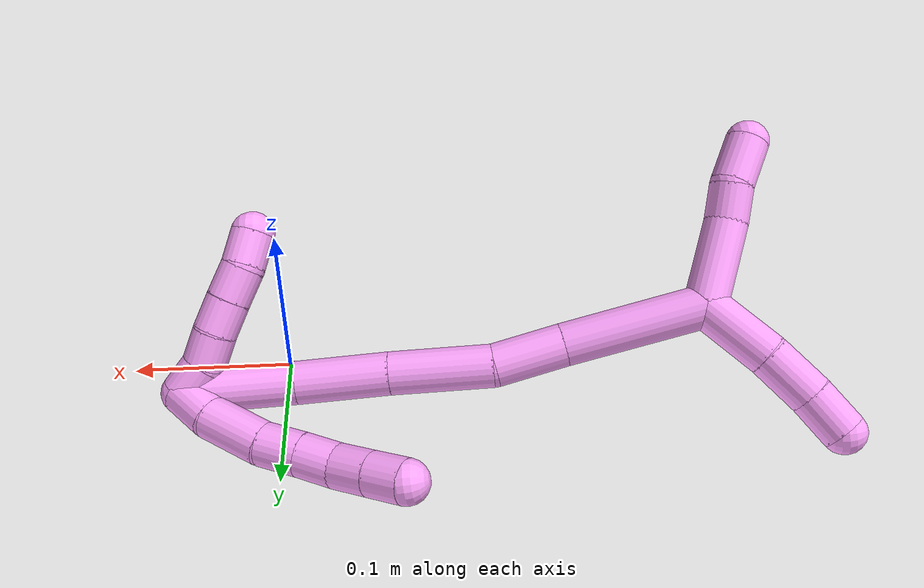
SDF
<sdf version="1.7">
 <world name="default">
  <model name="4">
   <static>0</static>
   <link name="4">
    <collision name="collision-cylinder-e_1_2_8">
     <pose>0.007882 0.003739 0.0087 -0.405936 0.694141 -0.148608</pose>
     <geometry><cylinder><radius>0.0125</radius><length>0.024642</length></cylinder></geometry>
     <surface>
      <friction><ode><mu>1.16</mu><mu2>1.16</mu2><slip1>0</slip1><slip2>0</slip2></ode></friction>
      <contact><ode><kp>1e+06</kp><kd>1</kd><max_vel>0</max_vel><min_depth>0.001</min_depth></ode></contact>
     </surface>
    </collision>
    <visual name="visual-cylinder-e_1_2_8">
     <pose>0.007882 0.003739 0.0087 -0.405936 0.694141 -0.148608</pose>
     <geometry><cylinder><radius>0.0125</radius><length>0.024642</length></cylinder></geometry>
     <material><ambient>1 0.65098 0.996078 1</ambient></material>
    </visual>
    <collision name="collision-cylinder-e_2_8_9">
     <pose>0.024691 0.01182 0.032797 -0.274798 0.508992 -0.071907</pose>
     <geometry><cylinder><radius>0.0125</radius><length>0.036637</length></cylinder></geometry>
     <surface>
      <friction><ode><mu>1.16</mu><mu2>1.16</mu2><slip1>0</slip1><slip2>0</slip2></ode></friction>
      <contact><ode><kp>1e+06</kp><kd>1</kd><max_vel>0</max_vel><min_depth>0.001</min_depth></ode></contact>
     </surface>
    </collision>
    <visual name="visual-cylinder-e_2_8_9">
     <pose>0.024691 0.01182 0.032797 -0.274798 0.508992 -0.071907</pose>
     <geometry><cylinder><radius>0.0125</radius><length>0.036637</length></cylinder></geometry>
     <material><ambient>1 0.65098 0.996078 1</ambient></material>
    </visual>
    <collision name="collision-cylinder-e_3_9_10">
     <pose>0.037823 0.017955 0.059165 -0.16213 0.361652 -0.029704</pose>
     <geometry><cylinder><radius>0.0125</radius><length>0.023774</length></cylinder></geometry>
     <surface>
      <friction><ode><mu>1.16</mu><mu2>1.16</mu2><slip1>0</slip1><slip2>0</slip2></ode></friction>
      <contact><ode><kp>1e+06</kp><kd>1</kd><max_vel>0</max_vel><min_depth>0.001</min_depth></ode></contact>
     </surface>
    </collision>
    <visual name="visual-cylinder-e_3_9_10">
     <pose>0.037823 0.017955 0.059165 -0.16213 0.361652 -0.029704</pose>
     <geometry><cylinder><radius>0.0125</radius><length>0.023774</length></cylinder></geometry>
     <material><ambient>1 0.65098 0.996078 1</ambient></material>
    </visual>
    <collision name="collision-cylinder-e_4_10_11">
     <pose>0.046213 0.021407 0.080013 -0.166265 0.395838 -0.033417</pose>
     <geometry><cylinder><radius>0.0125</radius><length>0.021706</length></cylinder></geometry>
     <surface>
      <friction><ode><mu>1.16</mu><mu2>1.16</mu2><slip1>0</slip1><slip2>0</slip2></ode></friction>
      <contact><ode><kp>1e+06</kp><kd>1</kd><max_vel>0</max_vel><min_depth>0.001</min_depth></ode></contact>
     </surface>
    </collision>
    <visual name="visual-cylinder-e_4_10_11">
     <pose>0.046213 0.021407 0.080013 -0.166265 0.395838 -0.033417</pose>
     <geometry><cylinder><radius>0.0125</radius><length>0.021706</length></cylinder></geometry>
     <material><ambient>1 0.65098 0.996078 1</ambient></material>
    </visual>
    <collision name="collision-cylinder-e_5_11_12">
     <pose>0.055398 0.022607 0.099753 0.046295 0.468705 0.011054</pose>
     <geometry><cylinder><radius>0.0125</radius><length>0.022137</length></cylinder></geometry>
     <surface>
      <friction><ode><mu>1.16</mu><mu2>1.16</mu2><slip1>0</slip1><slip2>0</slip2></ode></friction>
      <contact><ode><kp>1e+06</kp><kd>1</kd><max_vel>0</max_vel><min_depth>0.001</min_depth></ode></contact>
     </surface>
    </collision>
    <visual name="visual-cylinder-e_5_11_12">
     <pose>0.055398 0.022607 0.099753 0.046295 0.468705 0.011054</pose>
     <geometry><cylinder><radius>0.0125</radius><length>0.022137</length></cylinder></geometry>
     <material><ambient>1 0.65098 0.996078 1</ambient></material>
    </visual>
    <collision name="collision-cylinder-e_6_12_6">
     <pose>0.065097 0.021759 0.119057 0.041404 0.461471 0.009728</pose>
     <geometry><cylinder><radius>0.0125</radius><length>0.021105</length></cylinder></geometry>
     <surface>
      <friction><ode><mu>1.16</mu><mu2>1.16</mu2><slip1>0</slip1><slip2>0</slip2></ode></friction>
      <contact><ode><kp>1e+06</kp><kd>1</kd><max_vel>0</max_vel><min_depth>0.001</min_depth></ode></contact>
     </surface>
    </collision>
    <visual name="visual-cylinder-e_6_12_6">
     <pose>0.065097 0.021759 0.119057 0.041404 0.461471 0.009728</pose>
     <geometry><cylinder><radius>0.0125</radius><length>0.021105</length></cylinder></geometry>
     <material><ambient>1 0.65098 0.996078 1</ambient></material>
    </visual>
    <collision name="collision-cylinder-e_1_2_13">
     <pose>-0.003718 -0.005867 0.007194 0.684189 -0.380951 -0.137104</pose>
     <geometry><cylinder><radius>0.0125</radius><length>0.02</length></cylinder></geometry>
     <surface>
      <friction><ode><mu>1.16</mu><mu2>1.16</mu2><slip1>0</slip1><slip2>0</slip2></ode></friction>
      <contact><ode><kp>1e+06</kp><kd>1</kd><max_vel>0</max_vel><min_depth>0.001</min_depth></ode></contact>
     </surface>
    </collision>
    <visual name="visual-cylinder-e_1_2_13">
     <pose>-0.003718 -0.005867 0.007194 0.684189 -0.380951 -0.137104</pose>
     <geometry><cylinder><radius>0.0125</radius><length>0.02</length></cylinder></geometry>
     <material><ambient>1 0.65098 0.996078 1</ambient></material>
    </visual>
    <collision name="collision-cylinder-e_2_13_14">
     <pose>-0.011648 -0.019446 0.019161 1.01652 -0.434803 -0.244878</pose>
     <geometry><cylinder><radius>0.0125</radius><length>0.02</length></cylinder></geometry>
     <surface>
      <friction><ode><mu>1.16</mu><mu2>1.16</mu2><slip1>0</slip1><slip2>0</slip2></ode></friction>
      <contact><ode><kp>1e+06</kp><kd>1</kd><max_vel>0</max_vel><min_depth>0.001</min_depth></ode></contact>
     </surface>
    </collision>
    <visual name="visual-cylinder-e_2_13_14">
     <pose>-0.011648 -0.019446 0.019161 1.01652 -0.434803 -0.244878</pose>
     <geometry><cylinder><radius>0.0125</radius><length>0.02</length></cylinder></geometry>
     <material><ambient>1 0.65098 0.996078 1</ambient></material>
    </visual>
    <collision name="collision-cylinder-e_3_14_15">
     <pose>-0.020925 -0.034103 0.029046 0.936314 -0.530992 -0.273274</pose>
     <geometry><cylinder><radius>0.0125</radius><length>0.02</length></cylinder></geometry>
     <surface>
      <friction><ode><mu>1.16</mu><mu2>1.16</mu2><slip1>0</slip1><slip2>0</slip2></ode></friction>
      <contact><ode><kp>1e+06</kp><kd>1</kd><max_vel>0</max_vel><min_depth>0.001</min_depth></ode></contact>
     </surface>
    </collision>
    <visual name="visual-cylinder-e_3_14_15">
     <pose>-0.020925 -0.034103 0.029046 0.936314 -0.530992 -0.273274</pose>
     <geometry><cylinder><radius>0.0125</radius><length>0.02</length></cylinder></geometry>
     <material><ambient>1 0.65098 0.996078 1</ambient></material>
    </visual>
    <collision name="collision-cylinder-e_4_15_16">
     <pose>-0.031209 -0.047766 0.039413 0.90698 -0.549225 -0.272906</pose>
     <geometry><cylinder><radius>0.0125</radius><length>0.02</length></cylinder></geometry>
     <surface>
      <friction><ode><mu>1.16</mu><mu2>1.16</mu2><slip1>0</slip1><slip2>0</slip2></ode></friction>
      <contact><ode><kp>1e+06</kp><kd>1</kd><max_vel>0</max_vel><min_depth>0.001</min_depth></ode></contact>
     </surface>
    </collision>
    <visual name="visual-cylinder-e_4_15_16">
     <pose>-0.031209 -0.047766 0.039413 0.90698 -0.549225 -0.272906</pose>
     <geometry><cylinder><radius>0.0125</radius><length>0.02</length></cylinder></geometry>
     <material><ambient>1 0.65098 0.996078 1</ambient></material>
    </visual>
    <collision name="collision-cylinder-e_5_16_5">
     <pose>-0.043338 -0.060806 0.048173 1.06454 -0.762755 -0.463866</pose>
     <geometry><cylinder><radius>0.0125</radius><length>0.02</length></cylinder></geometry>
     <surface>
      <friction><ode><mu>1.16</mu><mu2>1.16</mu2><slip1>0</slip1><slip2>0</slip2></ode></friction>
      <contact><ode><kp>1e+06</kp><kd>1</kd><max_vel>0</max_vel><min_depth>0.001</min_depth></ode></contact>
     </surface>
    </collision>
    <visual name="visual-cylinder-e_5_16_5">
     <pose>-0.043338 -0.060806 0.048173 1.06454 -0.762755 -0.463866</pose>
     <geometry><cylinder><radius>0.0125</radius><length>0.02</length></cylinder></geometry>
     <material><ambient>1 0.65098 0.996078 1</ambient></material>
    </visual>
    <collision name="collision-cylinder-e_1_2_17">
     <pose>-0.002899 0.004053 0.031765 -0.126894 -0.090283 0.00574</pose>
     <geometry><cylinder><radius>0.0125</radius><length>0.064306</length></cylinder></geometry>
     <surface>
      <friction><ode><mu>1.16</mu><mu2>1.16</mu2><slip1>0</slip1><slip2>0</slip2></ode></friction>
      <contact><ode><kp>1e+06</kp><kd>1</kd><max_vel>0</max_vel><min_depth>0.001</min_depth></ode></contact>
     </surface>
    </collision>
    <visual name="visual-cylinder-e_1_2_17">
     <pose>-0.002899 0.004053 0.031765 -0.126894 -0.090283 0.00574</pose>
     <geometry><cylinder><radius>0.0125</radius><length>0.064306</length></cylinder></geometry>
     <material><ambient>1 0.65098 0.996078 1</ambient></material>
    </visual>
    <collision name="collision-cylinder-e_2_17_18">
     <pose>-0.007064 0.01003 0.0901 -0.072339 -0.047507 0.001719</pose>
     <geometry><cylinder><radius>0.0125</radius><length>0.053341</length></cylinder></geometry>
     <surface>
      <friction><ode><mu>1.16</mu><mu2>1.16</mu2><slip1>0</slip1><slip2>0</slip2></ode></friction>
      <contact><ode><kp>1e+06</kp><kd>1</kd><max_vel>0</max_vel><min_depth>0.001</min_depth></ode></contact>
     </surface>
    </collision>
    <visual name="visual-cylinder-e_2_17_18">
     <pose>-0.007064 0.01003 0.0901 -0.072339 -0.047507 0.001719</pose>
     <geometry><cylinder><radius>0.0125</radius><length>0.053341</length></cylinder></geometry>
     <material><ambient>1 0.65098 0.996078 1</ambient></material>
    </visual>
    <collision name="collision-cylinder-e_3_18_19">
     <pose>-0.008649 0.014248 0.146217 -0.077413 -0.010745 0.000416</pose>
     <geometry><cylinder><radius>0.0125</radius><length>0.059274</length></cylinder></geometry>
     <surface>
      <friction><ode><mu>1.16</mu><mu2>1.16</mu2><slip1>0</slip1><slip2>0</slip2></ode></friction>
      <contact><ode><kp>1e+06</kp><kd>1</kd><max_vel>0</max_vel><min_depth>0.001</min_depth></ode></contact>
     </surface>
    </collision>
    <visual name="visual-cylinder-e_3_18_19">
     <pose>-0.008649 0.014248 0.146217 -0.077413 -0.010745 0.000416</pose>
     <geometry><cylinder><radius>0.0125</radius><length>0.059274</length></cylinder></geometry>
     <material><ambient>1 0.65098 0.996078 1</ambient></material>
    </visual>
    <collision name="collision-cylinder-e_4_19_20">
     <pose>-0.013058 0.015567 0.195874 0.048325 -0.200441 -0.00486</pose>
     <geometry><cylinder><radius>0.0125</radius><length>0.04109</length></cylinder></geometry>
     <surface>
      <friction><ode><mu>1.16</mu><mu2>1.16</mu2><slip1>0</slip1><slip2>0</slip2></ode></friction>
      <contact><ode><kp>1e+06</kp><kd>1</kd><max_vel>0</max_vel><min_depth>0.001</min_depth></ode></contact>
     </surface>
    </collision>
    <visual name="visual-cylinder-e_4_19_20">
     <pose>-0.013058 0.015567 0.195874 0.048325 -0.200441 -0.00486</pose>
     <geometry><cylinder><radius>0.0125</radius><length>0.04109</length></cylinder></geometry>
     <material><ambient>1 0.65098 0.996078 1</ambient></material>
    </visual>
    <collision name="collision-cylinder-e_5_20_1">
     <pose>-0.021396 0.010771 0.256578 0.09391 -0.10378 -0.004881</pose>
     <geometry><cylinder><radius>0.0125</radius><length>0.081989</length></cylinder></geometry>
     <surface>
      <friction><ode><mu>1.16</mu><mu2>1.16</mu2><slip1>0</slip1><slip2>0</slip2></ode></friction>
      <contact><ode><kp>1e+06</kp><kd>1</kd><max_vel>0</max_vel><min_depth>0.001</min_depth></ode></contact>
     </surface>
    </collision>
    <visual name="visual-cylinder-e_5_20_1">
     <pose>-0.021396 0.010771 0.256578 0.09391 -0.10378 -0.004881</pose>
     <geometry><cylinder><radius>0.0125</radius><length>0.081989</length></cylinder></geometry>
     <material><ambient>1 0.65098 0.996078 1</ambient></material>
    </visual>
    <collision name="collision-cylinder-e_1_1_21">
     <pose>-0.043304 -0.008229 0.306795 1.00574 -0.776768 -0.442737</pose>
     <geometry><cylinder><radius>0.0125</radius><length>0.050392</length></cylinder></geometry>
     <surface>
      <friction><ode><mu>1.16</mu><mu2>1.16</mu2><slip1>0</slip1><slip2>0</slip2></ode></friction>
      <contact><ode><kp>1e+06</kp><kd>1</kd><max_vel>0</max_vel><min_depth>0.001</min_depth></ode></contact>
     </surface>
    </collision>
    <visual name="visual-cylinder-e_1_1_21">
     <pose>-0.043304 -0.008229 0.306795 1.00574 -0.776768 -0.442737</pose>
     <geometry><cylinder><radius>0.0125</radius><length>0.050392</length></cylinder></geometry>
     <material><ambient>1 0.65098 0.996078 1</ambient></material>
    </visual>
    <collision name="collision-cylinder-e_2_21_22">
     <pose>-0.067227 -0.031696 0.31948 1.21687 -0.616308 -0.436383</pose>
     <geometry><cylinder><radius>0.0125</radius><length>0.021664</length></cylinder></geometry>
     <surface>
      <friction><ode><mu>1.16</mu><mu2>1.16</mu2><slip1>0</slip1><slip2>0</slip2></ode></friction>
      <contact><ode><kp>1e+06</kp><kd>1</kd><max_vel>0</max_vel><min_depth>0.001</min_depth></ode></contact>
     </surface>
    </collision>
    <visual name="visual-cylinder-e_2_21_22">
     <pose>-0.067227 -0.031696 0.31948 1.21687 -0.616308 -0.436383</pose>
     <geometry><cylinder><radius>0.0125</radius><length>0.021664</length></cylinder></geometry>
     <material><ambient>1 0.65098 0.996078 1</ambient></material>
    </visual>
    <collision name="collision-cylinder-e_3_22_4">
     <pose>-0.083205 -0.047674 0.329003 0.871943 -0.768997 -0.372644</pose>
     <geometry><cylinder><radius>0.0125</radius><length>0.027944</length></cylinder></geometry>
     <surface>
      <friction><ode><mu>1.16</mu><mu2>1.16</mu2><slip1>0</slip1><slip2>0</slip2></ode></friction>
      <contact><ode><kp>1e+06</kp><kd>1</kd><max_vel>0</max_vel><min_depth>0.001</min_depth></ode></contact>
     </surface>
    </collision>
    <visual name="visual-cylinder-e_3_22_4">
     <pose>-0.083205 -0.047674 0.329003 0.871943 -0.768997 -0.372644</pose>
     <geometry><cylinder><radius>0.0125</radius><length>0.027944</length></cylinder></geometry>
     <material><ambient>1 0.65098 0.996078 1</ambient></material>
    </visual>
    <collision name="collision-cylinder-e_1_1_23">
     <pose>-0.014311 0.018105 0.311799 -0.651651 0.552075 -0.190833</pose>
     <geometry><cylinder><radius>0.0125</radius><length>0.043211</length></cylinder></geometry>
     <surface>
      <friction><ode><mu>1.16</mu><mu2>1.16</mu2><slip1>0</slip1><slip2>0</slip2></ode></friction>
      <contact><ode><kp>1e+06</kp><kd>1</kd><max_vel>0</max_vel><min_depth>0.001</min_depth></ode></contact>
     </surface>
    </collision>
    <visual name="visual-cylinder-e_1_1_23">
     <pose>-0.014311 0.018105 0.311799 -0.651651 0.552075 -0.190833</pose>
     <geometry><cylinder><radius>0.0125</radius><length>0.043211</length></cylinder></geometry>
     <material><ambient>1 0.65098 0.996078 1</ambient></material>
    </visual>
    <collision name="collision-cylinder-e_2_23_24">
     <pose>0.005011 0.0385 0.335958 -0.769686 0.541857 -0.224064</pose>
     <geometry><cylinder><radius>0.0125</radius><length>0.03099</length></cylinder></geometry>
     <surface>
      <friction><ode><mu>1.16</mu><mu2>1.16</mu2><slip1>0</slip1><slip2>0</slip2></ode></friction>
      <contact><ode><kp>1e+06</kp><kd>1</kd><max_vel>0</max_vel><min_depth>0.001</min_depth></ode></contact>
     </surface>
    </collision>
    <visual name="visual-cylinder-e_2_23_24">
     <pose>0.005011 0.0385 0.335958 -0.769686 0.541857 -0.224064</pose>
     <geometry><cylinder><radius>0.0125</radius><length>0.03099</length></cylinder></geometry>
     <material><ambient>1 0.65098 0.996078 1</ambient></material>
    </visual>
    <collision name="collision-cylinder-e_3_24_3">
     <pose>0.020413 0.055668 0.352462 -0.849686 0.612021 -0.283931</pose>
     <geometry><cylinder><radius>0.0125</radius><length>0.025799</length></cylinder></geometry>
     <surface>
      <friction><ode><mu>1.16</mu><mu2>1.16</mu2><slip1>0</slip1><slip2>0</slip2></ode></friction>
      <contact><ode><kp>1e+06</kp><kd>1</kd><max_vel>0</max_vel><min_depth>0.001</min_depth></ode></contact>
     </surface>
    </collision>
    <visual name="visual-cylinder-e_3_24_3">
     <pose>0.020413 0.055668 0.352462 -0.849686 0.612021 -0.283931</pose>
     <geometry><cylinder><radius>0.0125</radius><length>0.025799</length></cylinder></geometry>
     <material><ambient>1 0.65098 0.996078 1</ambient></material>
    </visual>
    <collision name="collision-sphere-3">
     <pose>0.027824 0.063598 0.359433 0 -0 0</pose>
     <geometry><sphere><radius>0.0125</radius></sphere></geometry>
     <surface>
      <friction><ode><mu>1.16</mu><mu2>1.16</mu2><slip1>0</slip1><slip2>0</slip2></ode></friction>
      <contact><ode><kp>1e+06</kp><kd>1</kd><max_vel>0</max_vel><min_depth>0.001</min_depth></ode></contact>
     </surface>
    </collision>
    <visual name="visual-sphere-3">
     <pose>0.027824 0.063598 0.359433 0 -0 0</pose>
     <geometry><sphere><radius>0.0125</radius></sphere></geometry>
     <material><ambient>1 0.65098 0.996078 1</ambient></material>
    </visual>
    <collision name="collision-sphere-24">
     <pose>0.013002 0.047739 0.345492 0 -0 0</pose>
     <geometry><sphere><radius>0.0125</radius></sphere></geometry>
     <surface>
      <friction><ode><mu>1.16</mu><mu2>1.16</mu2><slip1>0</slip1><slip2>0</slip2></ode></friction>
      <contact><ode><kp>1e+06</kp><kd>1</kd><max_vel>0</max_vel><min_depth>0.001</min_depth></ode></contact>
     </surface>
    </collision>
    <visual name="visual-sphere-24">
     <pose>0.013002 0.047739 0.345492 0 -0 0</pose>
     <geometry><sphere><radius>0.0125</radius></sphere></geometry>
     <material><ambient>1 0.65098 0.996078 1</ambient></material>
    </visual>
    <collision name="collision-sphere-23">
     <pose>-0.00298 0.029262 0.326425 0 -0 0</pose>
     <geometry><sphere><radius>0.0125</radius></sphere></geometry>
     <surface>
      <friction><ode><mu>1.16</mu><mu2>1.16</mu2><slip1>0</slip1><slip2>0</slip2></ode></friction>
      <contact><ode><kp>1e+06</kp><kd>1</kd><max_vel>0</max_vel><min_depth>0.001</min_depth></ode></contact>
     </surface>
    </collision>
    <visual name="visual-sphere-23">
     <pose>-0.00298 0.029262 0.326425 0 -0 0</pose>
     <geometry><sphere><radius>0.0125</radius></sphere></geometry>
     <material><ambient>1 0.65098 0.996078 1</ambient></material>
    </visual>
    <collision name="collision-sphere-4">
     <pose>-0.092921 -0.055361 0.335462 0 -0 0</pose>
     <geometry><sphere><radius>0.0125</radius></sphere></geometry>
     <surface>
      <friction><ode><mu>1.16</mu><mu2>1.16</mu2><slip1>0</slip1><slip2>0</slip2></ode></friction>
      <contact><ode><kp>1e+06</kp><kd>1</kd><max_vel>0</max_vel><min_depth>0.001</min_depth></ode></contact>
     </surface>
    </collision>
    <visual name="visual-sphere-4">
     <pose>-0.092921 -0.055361 0.335462 0 -0 0</pose>
     <geometry><sphere><radius>0.0125</radius></sphere></geometry>
     <material><ambient>1 0.65098 0.996078 1</ambient></material>
    </visual>
    <collision name="collision-sphere-22">
     <pose>-0.073489 -0.039987 0.322543 0 -0 0</pose>
     <geometry><sphere><radius>0.0125</radius></sphere></geometry>
     <surface>
      <friction><ode><mu>1.16</mu><mu2>1.16</mu2><slip1>0</slip1><slip2>0</slip2></ode></friction>
      <contact><ode><kp>1e+06</kp><kd>1</kd><max_vel>0</max_vel><min_depth>0.001</min_depth></ode></contact>
     </surface>
    </collision>
    <visual name="visual-sphere-22">
     <pose>-0.073489 -0.039987 0.322543 0 -0 0</pose>
     <geometry><sphere><radius>0.0125</radius></sphere></geometry>
     <material><ambient>1 0.65098 0.996078 1</ambient></material>
    </visual>
    <collision name="collision-sphere-21">
     <pose>-0.060966 -0.023405 0.316416 0 -0 0</pose>
     <geometry><sphere><radius>0.0125</radius></sphere></geometry>
     <surface>
      <friction><ode><mu>1.16</mu><mu2>1.16</mu2><slip1>0</slip1><slip2>0</slip2></ode></friction>
      <contact><ode><kp>1e+06</kp><kd>1</kd><max_vel>0</max_vel><min_depth>0.001</min_depth></ode></contact>
     </surface>
    </collision>
    <visual name="visual-sphere-21">
     <pose>-0.060966 -0.023405 0.316416 0 -0 0</pose>
     <geometry><sphere><radius>0.0125</radius></sphere></geometry>
     <material><ambient>1 0.65098 0.996078 1</ambient></material>
    </visual>
    <collision name="collision-sphere-1">
     <pose>-0.025643 0.006948 0.297173 0 -0 0</pose>
     <geometry><sphere><radius>0.0125</radius></sphere></geometry>
     <surface>
      <friction><ode><mu>1.16</mu><mu2>1.16</mu2><slip1>0</slip1><slip2>0</slip2></ode></friction>
      <contact><ode><kp>1e+06</kp><kd>1</kd><max_vel>0</max_vel><min_depth>0.001</min_depth></ode></contact>
     </surface>
    </collision>
    <visual name="visual-sphere-1">
     <pose>-0.025643 0.006948 0.297173 0 -0 0</pose>
     <geometry><sphere><radius>0.0125</radius></sphere></geometry>
     <material><ambient>1 0.65098 0.996078 1</ambient></material>
    </visual>
    <collision name="collision-sphere-12">
     <pose>0.060398 0.02215 0.109617 0 -0 0</pose>
     <geometry><sphere><radius>0.0125</radius></sphere></geometry>
     <surface>
      <friction><ode><mu>1.16</mu><mu2>1.16</mu2><slip1>0</slip1><slip2>0</slip2></ode></friction>
      <contact><ode><kp>1e+06</kp><kd>1</kd><max_vel>0</max_vel><min_depth>0.001</min_depth></ode></contact>
     </surface>
    </collision>
    <visual name="visual-sphere-12">
     <pose>0.060398 0.02215 0.109617 0 -0 0</pose>
     <geometry><sphere><radius>0.0125</radius></sphere></geometry>
     <material><ambient>1 0.65098 0.996078 1</ambient></material>
    </visual>
    <collision name="collision-sphere-11">
     <pose>0.050398 0.023064 0.089889 0 -0 0</pose>
     <geometry><sphere><radius>0.0125</radius></sphere></geometry>
     <surface>
      <friction><ode><mu>1.16</mu><mu2>1.16</mu2><slip1>0</slip1><slip2>0</slip2></ode></friction>
      <contact><ode><kp>1e+06</kp><kd>1</kd><max_vel>0</max_vel><min_depth>0.001</min_depth></ode></contact>
     </surface>
    </collision>
    <visual name="visual-sphere-11">
     <pose>0.050398 0.023064 0.089889 0 -0 0</pose>
     <geometry><sphere><radius>0.0125</radius></sphere></geometry>
     <material><ambient>1 0.65098 0.996078 1</ambient></material>
    </visual>
    <collision name="collision-sphere-10">
     <pose>0.042029 0.01975 0.070137 0 -0 0</pose>
     <geometry><sphere><radius>0.0125</radius></sphere></geometry>
     <surface>
      <friction><ode><mu>1.16</mu><mu2>1.16</mu2><slip1>0</slip1><slip2>0</slip2></ode></friction>
      <contact><ode><kp>1e+06</kp><kd>1</kd><max_vel>0</max_vel><min_depth>0.001</min_depth></ode></contact>
     </surface>
    </collision>
    <visual name="visual-sphere-10">
     <pose>0.042029 0.01975 0.070137 0 -0 0</pose>
     <geometry><sphere><radius>0.0125</radius></sphere></geometry>
     <material><ambient>1 0.65098 0.996078 1</ambient></material>
    </visual>
    <collision name="collision-sphere-9">
     <pose>0.033617 0.01616 0.048193 0 -0 0</pose>
     <geometry><sphere><radius>0.0125</radius></sphere></geometry>
     <surface>
      <friction><ode><mu>1.16</mu><mu2>1.16</mu2><slip1>0</slip1><slip2>0</slip2></ode></friction>
      <contact><ode><kp>1e+06</kp><kd>1</kd><max_vel>0</max_vel><min_depth>0.001</min_depth></ode></contact>
     </surface>
    </collision>
    <visual name="visual-sphere-9">
     <pose>0.033617 0.01616 0.048193 0 -0 0</pose>
     <geometry><sphere><radius>0.0125</radius></sphere></geometry>
     <material><ambient>1 0.65098 0.996078 1</ambient></material>
    </visual>
    <collision name="collision-sphere-2">
     <geometry><sphere><radius>0.0125</radius></sphere></geometry>
     <surface>
      <friction><ode><mu>1.16</mu><mu2>1.16</mu2><slip1>0</slip1><slip2>0</slip2></ode></friction>
      <contact><ode><kp>1e+06</kp><kd>1</kd><max_vel>0</max_vel><min_depth>0.001</min_depth></ode></contact>
     </surface>
    </collision>
    <visual name="visual-sphere-2">
     <geometry><sphere><radius>0.0125</radius></sphere></geometry>
     <material><ambient>1 0.65098 0.996078 1</ambient></material>
    </visual>
    <collision name="collision-sphere-19">
     <pose>-0.008968 0.01654 0.175764 0 -0 0</pose>
     <geometry><sphere><radius>0.0125</radius></sphere></geometry>
     <surface>
      <friction><ode><mu>1.16</mu><mu2>1.16</mu2><slip1>0</slip1><slip2>0</slip2></ode></friction>
      <contact><ode><kp>1e+06</kp><kd>1</kd><max_vel>0</max_vel><min_depth>0.001</min_depth></ode></contact>
     </surface>
    </collision>
    <visual name="visual-sphere-19">
     <pose>-0.008968 0.01654 0.175764 0 -0 0</pose>
     <geometry><sphere><radius>0.0125</radius></sphere></geometry>
     <material><ambient>1 0.65098 0.996078 1</ambient></material>
    </visual>
    <collision name="collision-sphere-8">
     <pose>0.015764 0.007479 0.017401 0 -0 0</pose>
     <geometry><sphere><radius>0.0125</radius></sphere></geometry>
     <surface>
      <friction><ode><mu>1.16</mu><mu2>1.16</mu2><slip1>0</slip1><slip2>0</slip2></ode></friction>
      <contact><ode><kp>1e+06</kp><kd>1</kd><max_vel>0</max_vel><min_depth>0.001</min_depth></ode></contact>
     </surface>
    </collision>
    <visual name="visual-sphere-8">
     <pose>0.015764 0.007479 0.017401 0 -0 0</pose>
     <geometry><sphere><radius>0.0125</radius></sphere></geometry>
     <material><ambient>1 0.65098 0.996078 1</ambient></material>
    </visual>
    <collision name="collision-sphere-6">
     <pose>0.069795 0.021368 0.128498 0 -0 0</pose>
     <geometry><sphere><radius>0.0125</radius></sphere></geometry>
     <surface>
      <friction><ode><mu>1.16</mu><mu2>1.16</mu2><slip1>0</slip1><slip2>0</slip2></ode></friction>
      <contact><ode><kp>1e+06</kp><kd>1</kd><max_vel>0</max_vel><min_depth>0.001</min_depth></ode></contact>
     </surface>
    </collision>
    <visual name="visual-sphere-6">
     <pose>0.069795 0.021368 0.128498 0 -0 0</pose>
     <geometry><sphere><radius>0.0125</radius></sphere></geometry>
     <material><ambient>1 0.65098 0.996078 1</ambient></material>
    </visual>
    <collision name="collision-sphere-13">
     <pose>-0.007436 -0.011735 0.014388 0 -0 0</pose>
     <geometry><sphere><radius>0.0125</radius></sphere></geometry>
     <surface>
      <friction><ode><mu>1.16</mu><mu2>1.16</mu2><slip1>0</slip1><slip2>0</slip2></ode></friction>
      <contact><ode><kp>1e+06</kp><kd>1</kd><max_vel>0</max_vel><min_depth>0.001</min_depth></ode></contact>
     </surface>
    </collision>
    <visual name="visual-sphere-13">
     <pose>-0.007436 -0.011735 0.014388 0 -0 0</pose>
     <geometry><sphere><radius>0.0125</radius></sphere></geometry>
     <material><ambient>1 0.65098 0.996078 1</ambient></material>
    </visual>
    <collision name="collision-sphere-14">
     <pose>-0.015861 -0.027158 0.023935 0 -0 0</pose>
     <geometry><sphere><radius>0.0125</radius></sphere></geometry>
     <surface>
      <friction><ode><mu>1.16</mu><mu2>1.16</mu2><slip1>0</slip1><slip2>0</slip2></ode></friction>
      <contact><ode><kp>1e+06</kp><kd>1</kd><max_vel>0</max_vel><min_depth>0.001</min_depth></ode></contact>
     </surface>
    </collision>
    <visual name="visual-sphere-14">
     <pose>-0.015861 -0.027158 0.023935 0 -0 0</pose>
     <geometry><sphere><radius>0.0125</radius></sphere></geometry>
     <material><ambient>1 0.65098 0.996078 1</ambient></material>
    </visual>
    <collision name="collision-sphere-15">
     <pose>-0.025988 -0.041048 0.034157 0 -0 0</pose>
     <geometry><sphere><radius>0.0125</radius></sphere></geometry>
     <surface>
      <friction><ode><mu>1.16</mu><mu2>1.16</mu2><slip1>0</slip1><slip2>0</slip2></ode></friction>
      <contact><ode><kp>1e+06</kp><kd>1</kd><max_vel>0</max_vel><min_depth>0.001</min_depth></ode></contact>
     </surface>
    </collision>
    <visual name="visual-sphere-15">
     <pose>-0.025988 -0.041048 0.034157 0 -0 0</pose>
     <geometry><sphere><radius>0.0125</radius></sphere></geometry>
     <material><ambient>1 0.65098 0.996078 1</ambient></material>
    </visual>
    <collision name="collision-sphere-16">
     <pose>-0.036429 -0.054484 0.044668 0 -0 0</pose>
     <geometry><sphere><radius>0.0125</radius></sphere></geometry>
     <surface>
      <friction><ode><mu>1.16</mu><mu2>1.16</mu2><slip1>0</slip1><slip2>0</slip2></ode></friction>
      <contact><ode><kp>1e+06</kp><kd>1</kd><max_vel>0</max_vel><min_depth>0.001</min_depth></ode></contact>
     </surface>
    </collision>
    <visual name="visual-sphere-16">
     <pose>-0.036429 -0.054484 0.044668 0 -0 0</pose>
     <geometry><sphere><radius>0.0125</radius></sphere></geometry>
     <material><ambient>1 0.65098 0.996078 1</ambient></material>
    </visual>
    <collision name="collision-sphere-5">
     <pose>-0.050247 -0.067129 0.051679 0 -0 0</pose>
     <geometry><sphere><radius>0.0125</radius></sphere></geometry>
     <surface>
      <friction><ode><mu>1.16</mu><mu2>1.16</mu2><slip1>0</slip1><slip2>0</slip2></ode></friction>
      <contact><ode><kp>1e+06</kp><kd>1</kd><max_vel>0</max_vel><min_depth>0.001</min_depth></ode></contact>
     </surface>
    </collision>
    <visual name="visual-sphere-5">
     <pose>-0.050247 -0.067129 0.051679 0 -0 0</pose>
     <geometry><sphere><radius>0.0125</radius></sphere></geometry>
     <material><ambient>1 0.65098 0.996078 1</ambient></material>
    </visual>
    <collision name="collision-sphere-17">
     <pose>-0.005798 0.008105 0.063529 0 -0 0</pose>
     <geometry><sphere><radius>0.0125</radius></sphere></geometry>
     <surface>
      <friction><ode><mu>1.16</mu><mu2>1.16</mu2><slip1>0</slip1><slip2>0</slip2></ode></friction>
      <contact><ode><kp>1e+06</kp><kd>1</kd><max_vel>0</max_vel><min_depth>0.001</min_depth></ode></contact>
     </surface>
    </collision>
    <visual name="visual-sphere-17">
     <pose>-0.005798 0.008105 0.063529 0 -0 0</pose>
     <geometry><sphere><radius>0.0125</radius></sphere></geometry>
     <material><ambient>1 0.65098 0.996078 1</ambient></material>
    </visual>
    <collision name="collision-sphere-18">
     <pose>-0.008331 0.011956 0.11667 0 -0 0</pose>
     <geometry><sphere><radius>0.0125</radius></sphere></geometry>
     <surface>
      <friction><ode><mu>1.16</mu><mu2>1.16</mu2><slip1>0</slip1><slip2>0</slip2></ode></friction>
      <contact><ode><kp>1e+06</kp><kd>1</kd><max_vel>0</max_vel><min_depth>0.001</min_depth></ode></contact>
     </surface>
    </collision>
    <visual name="visual-sphere-18">
     <pose>-0.008331 0.011956 0.11667 0 -0 0</pose>
     <geometry><sphere><radius>0.0125</radius></sphere></geometry>
     <material><ambient>1 0.65098 0.996078 1</ambient></material>
    </visual>
    <collision name="collision-sphere-20">
     <pose>-0.017149 0.014595 0.215984 0 -0 0</pose>
     <geometry><sphere><radius>0.0125</radius></sphere></geometry>
     <surface>
      <friction><ode><mu>1.16</mu><mu2>1.16</mu2><slip1>0</slip1><slip2>0</slip2></ode></friction>
      <contact><ode><kp>1e+06</kp><kd>1</kd><max_vel>0</max_vel><min_depth>0.001</min_depth></ode></contact>
     </surface>
    </collision>
    <visual name="visual-sphere-20">
     <pose>-0.017149 0.014595 0.215984 0 -0 0</pose>
     <geometry><sphere><radius>0.0125</radius></sphere></geometry>
     <material><ambient>1 0.65098 0.996078 1</ambient></material>
    </visual>
    <inertial>
     <pose>-0.007843 0.00421 0.161724 0 -0 0</pose>
     <mass>0.75</mass>
     <inertia><ixx>0.000146</ixx><ixy>0</ixy><ixz>0</ixz><iyy>0.000145</iyy><iyz>0</iyz><izz>6e-05</izz></inertia>
    </inertial>
   </link>
   <pose>0.051899 0.070072 0.045222 -1.39696 -0.061009 1.49586</pose>
  </model>
 </world>
</sdf>
